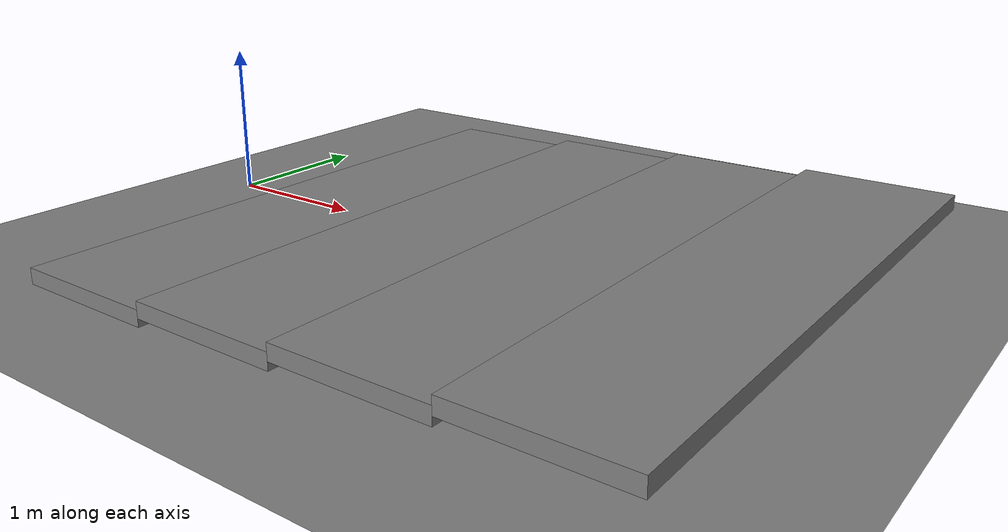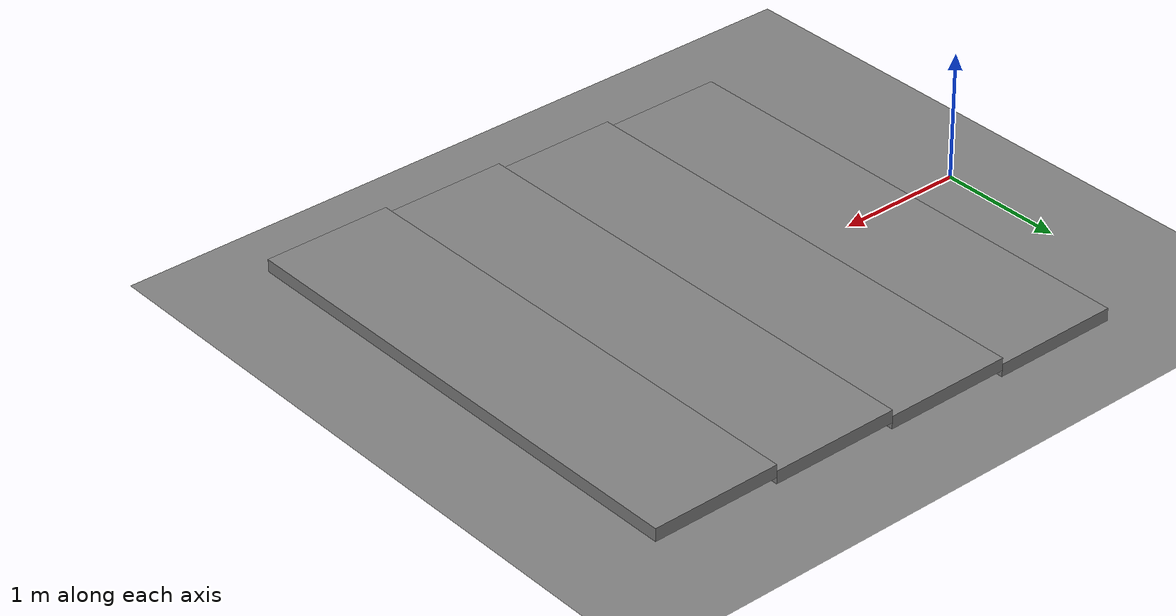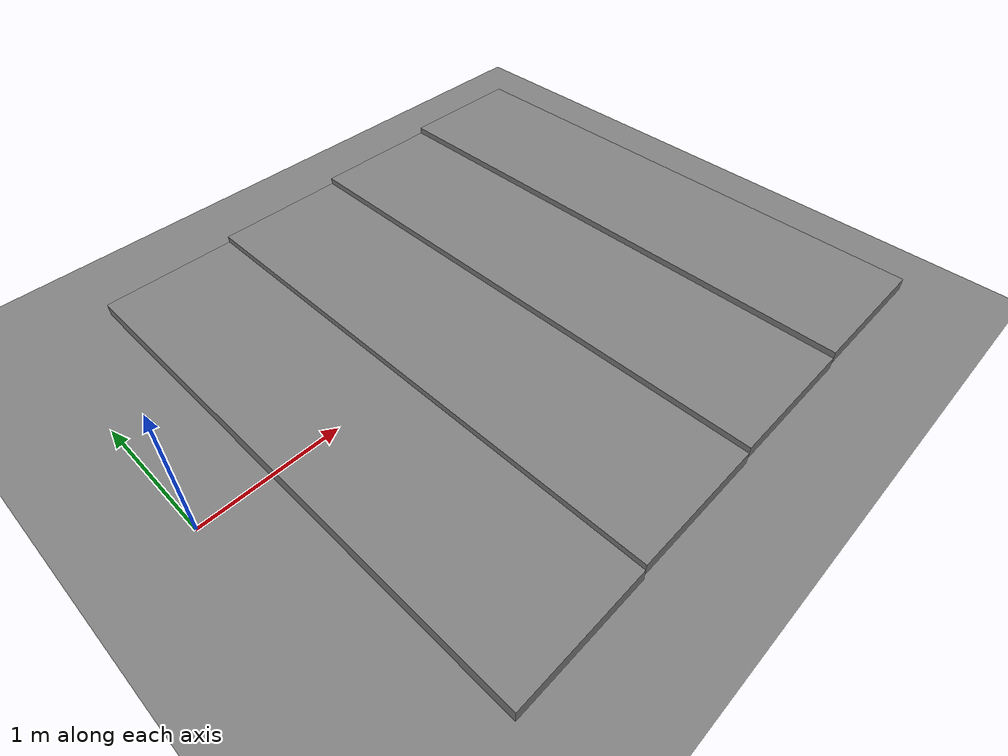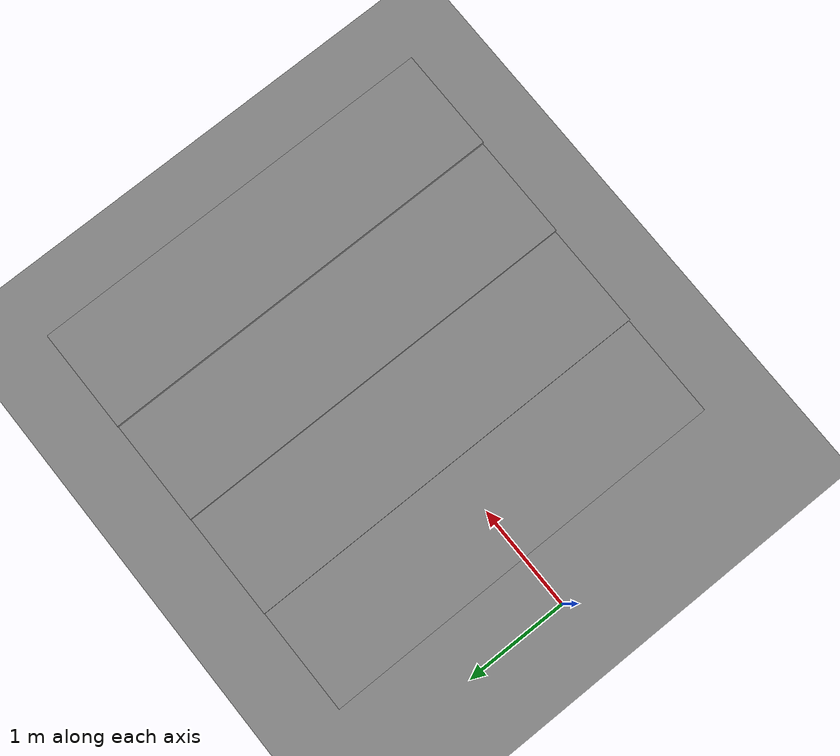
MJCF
<mujoco>
    <worldbody>
        <!-- ground -->
        <geom type="plane" size="10 10 0.1"/>

        <!-- stairs -->
        <geom type="box" pos="1 0 0.05" size="0.5 2 0.05"/>
        <geom type="box" pos="2 0 0.10" size="0.5 2 0.05"/>
        <geom type="box" pos="3 0 0.15" size="0.5 2 0.05"/>
        <geom type="box" pos="4 0 0.20" size="0.5 2 0.05"/>
    </worldbody>
</mujoco>
